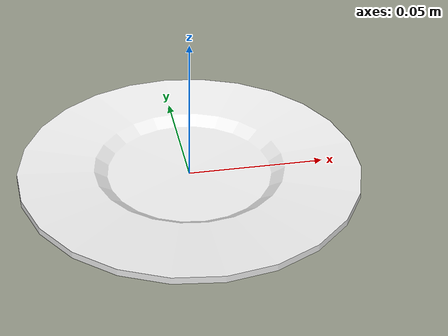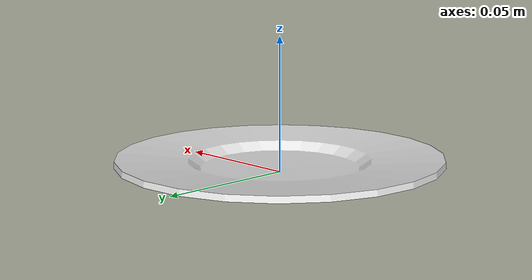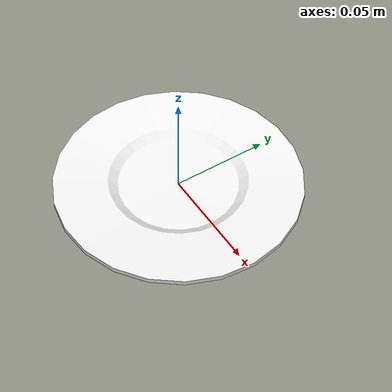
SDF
<?xml version='1.0'?>
<sdf version="1.4">
	<model name="saucer">
		<static>1</static>
		<link name="link">
			<visual name="mesh">
				<geometry>
					<mesh>
						<uri>model://meshes/saucer.dae</uri>
					</mesh>
				</geometry>
			</visual>
			<collision name="collider">
				<pose>0 0 0.005 0 0 0</pose>
				<geometry>
					<cylinder>
						<radius>0.06</radius>
						<length>0.01</length>
					</cylinder>
				</geometry>
			</collision>
		</link>
	</model>
</sdf>
